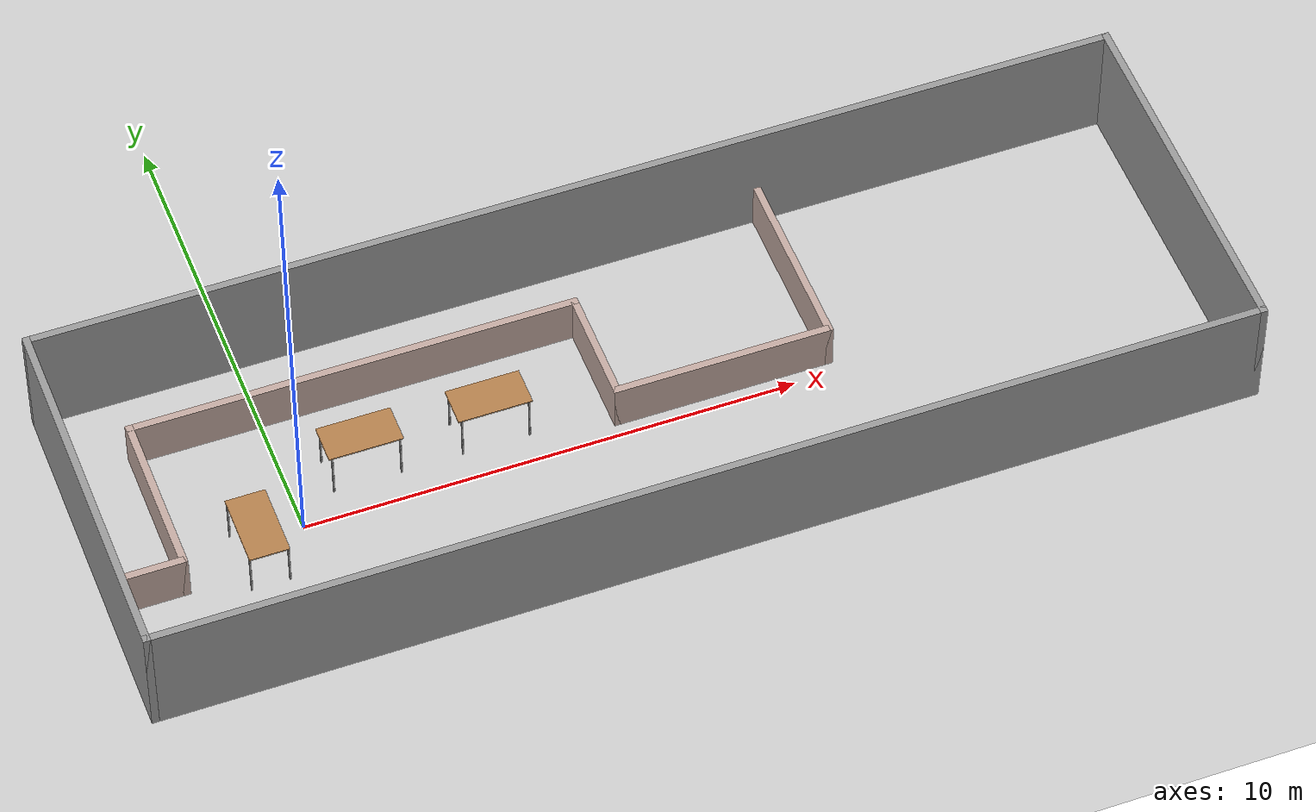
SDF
<sdf version="1.6">
 <world name="default">
  <light name="sun" type="directional">
   <pose>0 0 10 0 -0 0</pose>
   <diffuse>0.8 0.8 0.8 1</diffuse>
   <specular>0.2 0.2 0.2 1</specular>
   <attenuation>
    <range>1000</range>
    <constant>0.9</constant>
    <linear>0.01</linear>
    <quadratic>0.001</quadratic>
   </attenuation>
   <direction>-0.5 0.5 -1</direction>
  </light>
  <gravity>0 0 -9.8</gravity>
  <magnetic_field>6e-06 2.3e-05 -4.2e-05</magnetic_field>
  <atmosphere type="adiabatic"/>
  <physics name="default_physics" default="0" type="ode">
   <max_step_size>0.01</max_step_size>
   <real_time_factor>1</real_time_factor>
   <real_time_update_rate>100</real_time_update_rate>
   <ode>
    <solver>
     <type>quick</type>
     <iters>100</iters>
     <precon_iters>0</precon_iters>
     <sor>1</sor>
     <use_dynamic_moi_rescaling>0</use_dynamic_moi_rescaling>
    </solver>
    <constraints>
     <cfm>0</cfm>
     <erp>0.5</erp>
     <contact_max_correcting_vel>1000</contact_max_correcting_vel>
     <contact_surface_layer>0</contact_surface_layer>
    </constraints>
   </ode>
  </physics>
  <scene><ambient>0.4 0.4 0.4 1</ambient><background>0.7 0.7 0.7 1</background><shadows>0</shadows></scene>
  <spherical_coordinates>
   <surface_model>EARTH_WGS84</surface_model>
   <latitude_deg>0</latitude_deg>
   <longitude_deg>0</longitude_deg>
   <elevation>0</elevation>
   <heading_deg>0</heading_deg>
  </spherical_coordinates>
  <model name="outer_walls">
   <pose>7.1 0.455065 0 0 -0 0</pose>
   <link name="Wall_6">
    <collision name="Wall_6_Collision">
     <geometry><box><size>22.35 0.15 2.5</size></box></geometry>
     <pose>0 0 1.25 0 -0 0</pose>
    </collision>
    <visual name="Wall_6_Visual">
     <pose>0 0 1.25 0 -0 0</pose>
     <geometry><box><size>22.35 0.15 2.5</size></box></geometry>
     <material>
      <script><uri>file://media/materials/scripts/gazebo.material</uri><name>Gazebo/Grey</name></script>
      <ambient>1 1 1 1</ambient>
     </material>
     <meta><layer>0</layer></meta>
    </visual>
    <pose>0 -3.75 0 0 -0 0</pose>
   </link>
   <link name="Wall_7">
    <collision name="Wall_7_Collision">
     <geometry><box><size>7.65 0.15 2.5</size></box></geometry>
     <pose>0 0 1.25 0 -0 0</pose>
    </collision>
    <visual name="Wall_7_Visual">
     <pose>0 0 1.25 0 -0 0</pose>
     <geometry><box><size>7.65 0.15 2.5</size></box></geometry>
     <material>
      <script><uri>file://media/materials/scripts/gazebo.material</uri><name>Gazebo/Grey</name></script>
      <ambient>1 1 1 1</ambient>
     </material>
     <meta><layer>0</layer></meta>
    </visual>
    <pose>11.1 0 0 0 -0 1.5708</pose>
   </link>
   <link name="Wall_8">
    <collision name="Wall_8_Collision">
     <geometry><box><size>22.35 0.15 2.5</size></box></geometry>
     <pose>0 0 1.25 0 -0 0</pose>
    </collision>
    <visual name="Wall_8_Visual">
     <pose>0 0 1.25 0 -0 0</pose>
     <geometry><box><size>22.35 0.15 2.5</size></box></geometry>
     <material>
      <script><uri>file://media/materials/scripts/gazebo.material</uri><name>Gazebo/Grey</name></script>
      <ambient>1 1 1 1</ambient>
     </material>
     <meta><layer>0</layer></meta>
    </visual>
    <pose>0 3.75 0 0 -0 3.14159</pose>
   </link>
   <link name="Wall_9">
    <collision name="Wall_9_Collision">
     <geometry><box><size>7.65 0.15 2.5</size></box></geometry>
     <pose>0 0 1.25 0 -0 0</pose>
    </collision>
    <visual name="Wall_9_Visual">
     <pose>0 0 1.25 0 -0 0</pose>
     <geometry><box><size>7.65 0.15 2.5</size></box></geometry>
     <material>
      <script><uri>file://media/materials/scripts/gazebo.material</uri><name>Gazebo/Grey</name></script>
      <ambient>1 1 1 1</ambient>
     </material>
     <meta><layer>0</layer></meta>
    </visual>
    <pose>-11.1 0 0 0 -0 -1.5708</pose>
   </link>
   <static>1</static>
  </model>
  <model name="inner_walls">
   <pose>3.4 1.69628 0 0 -0 0</pose>
   <link name="Wall_0">
    <collision name="Wall_0_Collision">
     <geometry><box><size>1.6 0.15 1</size></box></geometry>
     <pose>0 0 0.5 0 -0 0</pose>
    </collision>
    <visual name="Wall_0_Visual">
     <pose>0 0 0.5 0 -0 0</pose>
     <geometry><box><size>1.6 0.15 1</size></box></geometry>
     <material>
      <script><uri>file://media/materials/scripts/gazebo.material</uri><name>Gazebo/Grey</name></script>
      <ambient>0.760784 0.662745 0.627451 1</ambient>
     </material>
     <meta><layer>0</layer></meta>
    </visual>
    <pose>-6.675 -2.382 0 0 -0 0</pose>
   </link>
   <link name="Wall_1">
    <collision name="Wall_1_Collision">
     <geometry><box><size>3.5 0.15 1</size></box></geometry>
     <pose>0 0 0.5 0 -0 0</pose>
    </collision>
    <visual name="Wall_1_Visual">
     <pose>0 0 0.5 0 -0 0</pose>
     <geometry><box><size>3.5 0.15 1</size></box></geometry>
     <material>
      <script><uri>file://media/materials/scripts/gazebo.material</uri><name>Gazebo/Grey</name></script>
      <ambient>0.760784 0.662745 0.627451 1</ambient>
     </material>
     <meta><layer>0</layer></meta>
    </visual>
    <pose>-5.95 -0.707 0 0 -0 1.5708</pose>
   </link>
   <link name="Wall_2">
    <collision name="Wall_2_Collision">
     <geometry><box><size>9.14978 0.15 1</size></box></geometry>
     <pose>0 0 0.5 0 -0 0</pose>
    </collision>
    <visual name="Wall_2_Visual">
     <pose>0 0 0.5 0 -0 0</pose>
     <geometry><box><size>9.14978 0.15 1</size></box></geometry>
     <material>
      <script><uri>file://media/materials/scripts/gazebo.material</uri><name>Gazebo/Grey</name></script>
      <ambient>0.760784 0.662745 0.627451 1</ambient>
     </material>
     <meta><layer>0</layer></meta>
    </visual>
    <pose>-1.45 0.968 0 0 -0 0</pose>
   </link>
   <link name="Wall_3">
    <collision name="Wall_3_Collision">
     <geometry><box><size>2.5 0.15 1</size></box></geometry>
     <pose>0 0 0.5 0 -0 0</pose>
    </collision>
    <visual name="Wall_3_Visual">
     <pose>0 0 0.5 0 -0 0</pose>
     <geometry><box><size>2.5 0.15 1</size></box></geometry>
     <material>
      <script><uri>file://media/materials/scripts/gazebo.material</uri><name>Gazebo/Grey</name></script>
      <ambient>0.760784 0.662745 0.627451 1</ambient>
     </material>
     <meta><layer>0</layer></meta>
    </visual>
    <pose>3.05 -0.207 0 0 -0 -1.5708</pose>
   </link>
   <link name="Wall_4">
    <collision name="Wall_4_Collision">
     <geometry><box><size>4.5 0.15 1</size></box></geometry>
     <pose>0 0 0.5 0 -0 0</pose>
    </collision>
    <visual name="Wall_4_Visual">
     <pose>0 0 0.5 0 -0 0</pose>
     <geometry><box><size>4.5 0.15 1</size></box></geometry>
     <material>
      <script><uri>file://media/materials/scripts/gazebo.material</uri><name>Gazebo/Grey</name></script>
      <ambient>0.760784 0.662745 0.627451 1</ambient>
     </material>
     <meta><layer>0</layer></meta>
    </visual>
    <pose>5.225 -1.382 0 0 -0 0</pose>
   </link>
   <link name="Wall_5">
    <collision name="Wall_5_Collision">
     <geometry><box><size>3.914 0.15 1</size></box></geometry>
     <pose>0 0 0.5 0 -0 0</pose>
    </collision>
    <visual name="Wall_5_Visual">
     <pose>0 0 0.5 0 -0 0</pose>
     <geometry><box><size>3.914 0.15 1</size></box></geometry>
     <material>
      <script><uri>file://media/materials/scripts/gazebo.material</uri><name>Gazebo/Grey</name></script>
      <ambient>0.760784 0.662745 0.627451 1</ambient>
     </material>
     <meta><layer>0</layer></meta>
    </visual>
    <pose>7.4 0.5 0 0 -0 1.5708</pose>
   </link>
   <static>1</static>
  </model>
  <model name="table">
   <static>1</static>
   <link name="link">
    <collision name="surface">
     <pose>0 0 1 0 -0 0</pose>
     <geometry><box><size>1.5 0.8 0.03</size></box></geometry>
     <surface><friction><ode><mu>0.6</mu><mu2>0.6</mu2></ode></friction></surface>
    </collision>
    <visual name="visual1">
     <pose>0 0 1 0 -0 0</pose>
     <geometry><box><size>1.5 0.8 0.03</size></box></geometry>
     <material>
      <script><uri>file://media/materials/scripts/gazebo.material</uri><name>Gazebo/Wood</name></script>
     </material>
    </visual>
    <collision name="front_left_leg">
     <pose>0.68 0.38 0.5 0 -0 0</pose>
     <geometry><cylinder><radius>0.02</radius><length>1</length></cylinder></geometry>
    </collision>
    <visual name="front_left_leg">
     <pose>0.68 0.38 0.5 0 -0 0</pose>
     <geometry><cylinder><radius>0.02</radius><length>1</length></cylinder></geometry>
     <material>
      <script><uri>file://media/materials/scripts/gazebo.material</uri><name>Gazebo/Grey</name></script>
     </material>
    </visual>
    <collision name="front_right_leg">
     <pose>0.68 -0.38 0.5 0 -0 0</pose>
     <geometry><cylinder><radius>0.02</radius><length>1</length></cylinder></geometry>
    </collision>
    <visual name="front_right_leg">
     <pose>0.68 -0.38 0.5 0 -0 0</pose>
     <geometry><cylinder><radius>0.02</radius><length>1</length></cylinder></geometry>
     <material>
      <script><uri>file://media/materials/scripts/gazebo.material</uri><name>Gazebo/Grey</name></script>
     </material>
    </visual>
    <collision name="back_right_leg">
     <pose>-0.68 -0.38 0.5 0 -0 0</pose>
     <geometry><cylinder><radius>0.02</radius><length>1</length></cylinder></geometry>
    </collision>
    <visual name="back_right_leg">
     <pose>-0.68 -0.38 0.5 0 -0 0</pose>
     <geometry><cylinder><radius>0.02</radius><length>1</length></cylinder></geometry>
     <material>
      <script><uri>file://media/materials/scripts/gazebo.material</uri><name>Gazebo/Grey</name></script>
     </material>
    </visual>
    <collision name="back_left_leg">
     <pose>-0.68 0.38 0.5 0 -0 0</pose>
     <geometry><cylinder><radius>0.02</radius><length>1</length></cylinder></geometry>
    </collision>
    <visual name="back_left_leg">
     <pose>-0.68 0.38 0.5 0 -0 0</pose>
     <geometry><cylinder><radius>0.02</radius><length>1</length></cylinder></geometry>
     <material>
      <script><uri>file://media/materials/scripts/gazebo.material</uri><name>Gazebo/Grey</name></script>
     </material>
    </visual>
   </link>
   <pose>4.1 1 0 0 -0 0</pose>
  </model>
  <model name="table_0">
   <static>1</static>
   <link name="link">
    <collision name="surface">
     <pose>0 0 1 0 -0 0</pose>
     <geometry><box><size>1.5 0.8 0.03</size></box></geometry>
     <surface><friction><ode><mu>0.6</mu><mu2>0.6</mu2></ode></friction></surface>
    </collision>
    <visual name="visual1">
     <pose>0 0 1 0 -0 0</pose>
     <geometry><box><size>1.5 0.8 0.03</size></box></geometry>
     <material>
      <script><uri>file://media/materials/scripts/gazebo.material</uri><name>Gazebo/Wood</name></script>
     </material>
    </visual>
    <collision name="front_left_leg">
     <pose>0.68 0.38 0.5 0 -0 0</pose>
     <geometry><cylinder><radius>0.02</radius><length>1</length></cylinder></geometry>
    </collision>
    <visual name="front_left_leg">
     <pose>0.68 0.38 0.5 0 -0 0</pose>
     <geometry><cylinder><radius>0.02</radius><length>1</length></cylinder></geometry>
     <material>
      <script><uri>file://media/materials/scripts/gazebo.material</uri><name>Gazebo/Grey</name></script>
     </material>
    </visual>
    <collision name="front_right_leg">
     <pose>0.68 -0.38 0.5 0 -0 0</pose>
     <geometry><cylinder><radius>0.02</radius><length>1</length></cylinder></geometry>
    </collision>
    <visual name="front_right_leg">
     <pose>0.68 -0.38 0.5 0 -0 0</pose>
     <geometry><cylinder><radius>0.02</radius><length>1</length></cylinder></geometry>
     <material>
      <script><uri>file://media/materials/scripts/gazebo.material</uri><name>Gazebo/Grey</name></script>
     </material>
    </visual>
    <collision name="back_right_leg">
     <pose>-0.68 -0.38 0.5 0 -0 0</pose>
     <geometry><cylinder><radius>0.02</radius><length>1</length></cylinder></geometry>
    </collision>
    <visual name="back_right_leg">
     <pose>-0.68 -0.38 0.5 0 -0 0</pose>
     <geometry><cylinder><radius>0.02</radius><length>1</length></cylinder></geometry>
     <material>
      <script><uri>file://media/materials/scripts/gazebo.material</uri><name>Gazebo/Grey</name></script>
     </material>
    </visual>
    <collision name="back_left_leg">
     <pose>-0.68 0.38 0.5 0 -0 0</pose>
     <geometry><cylinder><radius>0.02</radius><length>1</length></cylinder></geometry>
    </collision>
    <visual name="back_left_leg">
     <pose>-0.68 0.38 0.5 0 -0 0</pose>
     <geometry><cylinder><radius>0.02</radius><length>1</length></cylinder></geometry>
     <material>
      <script><uri>file://media/materials/scripts/gazebo.material</uri><name>Gazebo/Grey</name></script>
     </material>
    </visual>
   </link>
   <pose>1.5 1 0 0 -0 0</pose>
  </model>
  <model name="table_1">
   <static>1</static>
   <link name="link">
    <collision name="surface">
     <pose>0 0 1 0 -0 0</pose>
     <geometry><box><size>1.5 0.8 0.03</size></box></geometry>
     <surface><friction><ode><mu>0.6</mu><mu2>0.6</mu2></ode></friction></surface>
    </collision>
    <visual name="visual1">
     <pose>0 0 1 0 -0 0</pose>
     <geometry><box><size>1.5 0.8 0.03</size></box></geometry>
     <material>
      <script><uri>file://media/materials/scripts/gazebo.material</uri><name>Gazebo/Wood</name></script>
     </material>
    </visual>
    <collision name="front_left_leg">
     <pose>0.68 0.38 0.5 0 -0 0</pose>
     <geometry><cylinder><radius>0.02</radius><length>1</length></cylinder></geometry>
    </collision>
    <visual name="front_left_leg">
     <pose>0.68 0.38 0.5 0 -0 0</pose>
     <geometry><cylinder><radius>0.02</radius><length>1</length></cylinder></geometry>
     <material>
      <script><uri>file://media/materials/scripts/gazebo.material</uri><name>Gazebo/Grey</name></script>
     </material>
    </visual>
    <collision name="front_right_leg">
     <pose>0.68 -0.38 0.5 0 -0 0</pose>
     <geometry><cylinder><radius>0.02</radius><length>1</length></cylinder></geometry>
    </collision>
    <visual name="front_right_leg">
     <pose>0.68 -0.38 0.5 0 -0 0</pose>
     <geometry><cylinder><radius>0.02</radius><length>1</length></cylinder></geometry>
     <material>
      <script><uri>file://media/materials/scripts/gazebo.material</uri><name>Gazebo/Grey</name></script>
     </material>
    </visual>
    <collision name="back_right_leg">
     <pose>-0.68 -0.38 0.5 0 -0 0</pose>
     <geometry><cylinder><radius>0.02</radius><length>1</length></cylinder></geometry>
    </collision>
    <visual name="back_right_leg">
     <pose>-0.68 -0.38 0.5 0 -0 0</pose>
     <geometry><cylinder><radius>0.02</radius><length>1</length></cylinder></geometry>
     <material>
      <script><uri>file://media/materials/scripts/gazebo.material</uri><name>Gazebo/Grey</name></script>
     </material>
    </visual>
    <collision name="back_left_leg">
     <pose>-0.68 0.38 0.5 0 -0 0</pose>
     <geometry><cylinder><radius>0.02</radius><length>1</length></cylinder></geometry>
    </collision>
    <visual name="back_left_leg">
     <pose>-0.68 0.38 0.5 0 -0 0</pose>
     <geometry><cylinder><radius>0.02</radius><length>1</length></cylinder></geometry>
     <material>
      <script><uri>file://media/materials/scripts/gazebo.material</uri><name>Gazebo/Grey</name></script>
     </material>
    </visual>
   </link>
   <pose>-1 -0.4 0 0 -0 1.57</pose>
  </model>
  <audio><device>default</device></audio>
  <model name="neobotix_ground_plane">
   <static>1</static>
   <link name="link">
    <collision name="collision">
     <geometry><plane><normal>0 0 1</normal><size>100 100</size></plane></geometry>
     <surface><friction><ode><mu>100</mu><mu2>50</mu2></ode></friction></surface>
    </collision>
    <visual name="visual">
     <cast_shadows>0</cast_shadows>
     <geometry><plane><normal>0 0 1</normal><size>100 100</size></plane></geometry>
     <material>
      <script>
       <uri>model://neobotix_ground_plane/materials/scripts</uri>
       <uri>model://neobotix_ground_plane/materials/textures/</uri>
       <name>NeobotixGroundPlane/Image</name>
      </script>
     </material>
    </visual>
   </link>
   <pose>15.6163 -0.783534 0 0 -0 0</pose>
  </model>
 </world>
</sdf>
